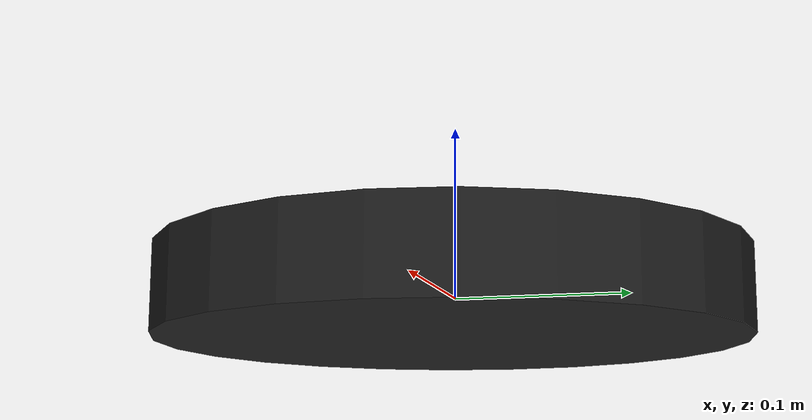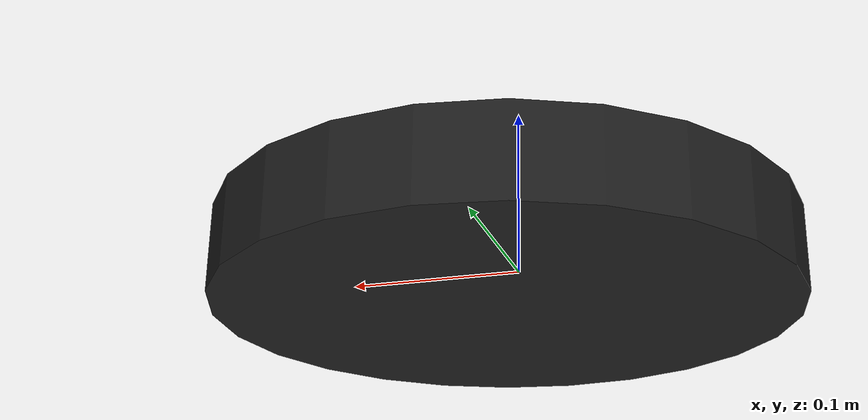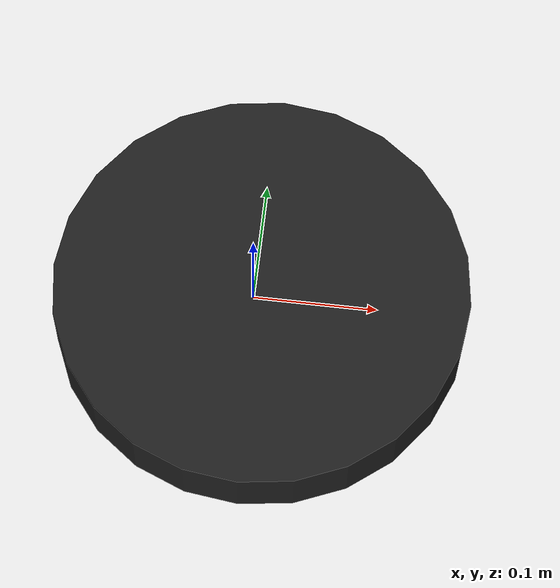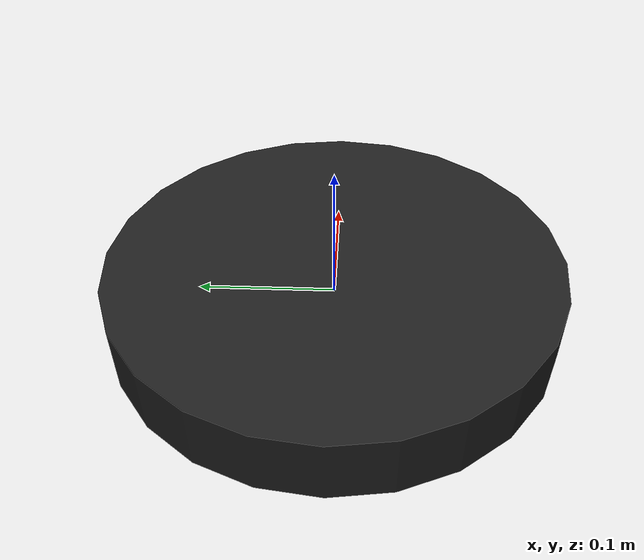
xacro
<?xml version="1.0" encoding="UTF-8"?>
<robot xmlns:xacro="http://wiki.ros.org/xacro" name="robot_x">

  <!-- Use this if parameters are set from the launch file, otherwise delete -->
  <xacro:arg name="prefix" default=""/>

  <xacro:arg name="use_mock_hardware" default="false"/>
  <xacro:arg name="mock_sensor_commands" default="false"/>
  <xacro:arg name="sim_gazebo_classic" default="false"/>
  <xacro:arg name="sim_gazebo" default="false"/>
  <xacro:arg name="simulation_controllers" default="" />
  <xacro:arg name="wheelbase" default="0.235"/> <!-- set for your model -->

  <xacro:include filename="$(find robot_description)/urdf/robot_x/robot_x_macro.xacro"/>
  <xacro:include filename="$(find robot_description)/urdf/robot_x/robot_x_macro.ros2_control.xacro"/>

  <!-- create link fixed to the "world" -->

  <!-- Load robot's macro with parameters -->
  <!-- set prefix if multiple robots are used -->

  <xacro:robot_x prefix="$(arg prefix)">
  </xacro:robot_x>

  <!-- Load ros2_control macro with parameters -->
  <xacro:robot_x_ros2_control
    name="robot_x"
    prefix="$(arg prefix)"
    use_mock_hardware="$(arg use_mock_hardware)"
    mock_sensor_commands="$(arg mock_sensor_commands)"
    sim_gazebo_classic="$(arg sim_gazebo_classic)"
    sim_gazebo="$(arg sim_gazebo)"
    simulation_controllers="$(arg simulation_controllers)"
    wheelbase="$(arg wheelbase)"/>
</robot>

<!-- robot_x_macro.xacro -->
<robot xmlns:xacro="http://wiki.ros.org/xacro">

  <xacro:include filename="$(find robot_description)/urdf/common/inertials.xacro"/>
  <xacro:include filename="$(find robot_description)/urdf/common/materials.xacro"/>

  <xacro:macro name="robot_x" params="prefix">

    <!-- BASE LINK -->
    <link name="${prefix}base_link">
      <visual>
        <origin xyz="0.0065 0 0" rpy="0 0 0"/>
        <geometry>
          <cylinder length="0.05" radius="0.1675"/> <!-- robot radius 335mm -->
        </geometry>
        <material name="black"/>
      </visual>
      <collision>
        <origin xyz="0.0065 0 0" rpy="0 0 0"/>
        <geometry>
          <cylinder length="0.05" radius="0.1675"/>
        </geometry>
      </collision>
    </link>

    <!-- LEFT WHEEL LINK -->
    <link name="${prefix}left_wheel_link">
      <xacro:default_inertial/>
      <visual>
        <origin xyz="0 0 0" rpy="0 0 0"/>
        <geometry>
          <cylinder length="0.015" radius="0.036"/> <!-- wheel thickness 15mm, radius 36mm -->
        </geometry>
        <material name="blue"/>
      </visual>
      <collision>
        <origin xyz="0 0 0" rpy="0 0 0"/>
        <geometry>
          <cylinder length="0.015" radius="0.036"/>
        </geometry>
      </collision>
    </link>

    <!-- RIGHT WHEEL LINK -->
    <link name="${prefix}right_wheel_link">
      <xacro:default_inertial/>
      <visual>
        <origin xyz="0 0 0" rpy="0 0 0"/>
        <geometry>
          <cylinder length="0.015" radius="0.036"/>
        </geometry>
        <material name="grey"/>
      </visual>
      <collision>
        <origin xyz="0 0 0" rpy="0 0 0"/>
        <geometry>
          <cylinder length="0.015" radius="0.036"/>
        </geometry>
      </collision>
    </link>

    <link name="${prefix}imu_link"/>

    <joint name="${prefix}imu_joint" type="fixed">
        <parent link="${prefix}base_link"/>
        <child link="${prefix}imu_link"/>
        <origin xyz="0.04 0 0.03"
                rpy="0 0 0"/>
    </joint>

    <!-- Left wheel joint -->
    <joint name="${prefix}left_wheel_joint" type="continuous">
      <origin xyz="0 0.1175 0" rpy="0 0 0"/> <!-- x behind center, y left -->
      <axis xyz="0 1 0"/> <!-- rotation around Y-axis -->
      <parent link="${prefix}base_link"/>
      <child link="${prefix}left_wheel_link"/>
      <limit effort="10" velocity="300"/>
    </joint>

    <!-- Right wheel joint -->
    <joint name="${prefix}right_wheel_joint" type="continuous">
      <origin xyz="-0 -0.1175 0" rpy="0 0 0"/> <!-- x behind center, y right -->
      <axis xyz="0 1 0"/>
      <parent link="${prefix}base_link"/>
      <child link="${prefix}right_wheel_link"/>
      <limit effort="10" velocity="300"/>
    </joint>

  </xacro:macro>
</robot>
